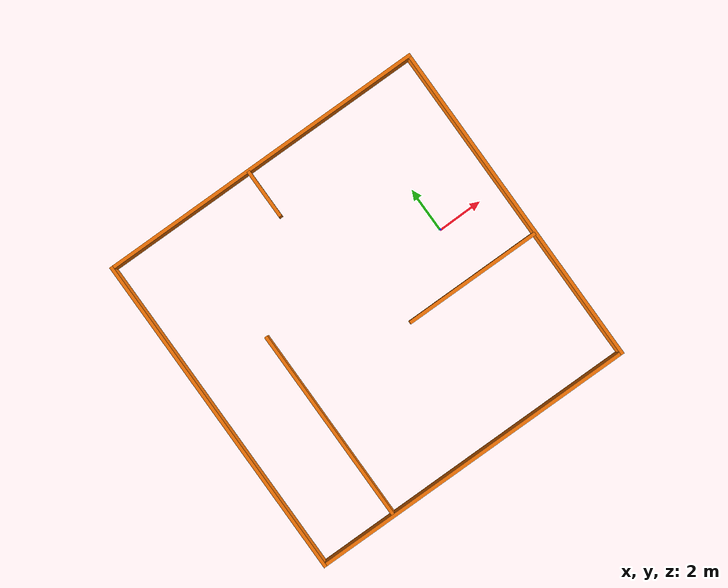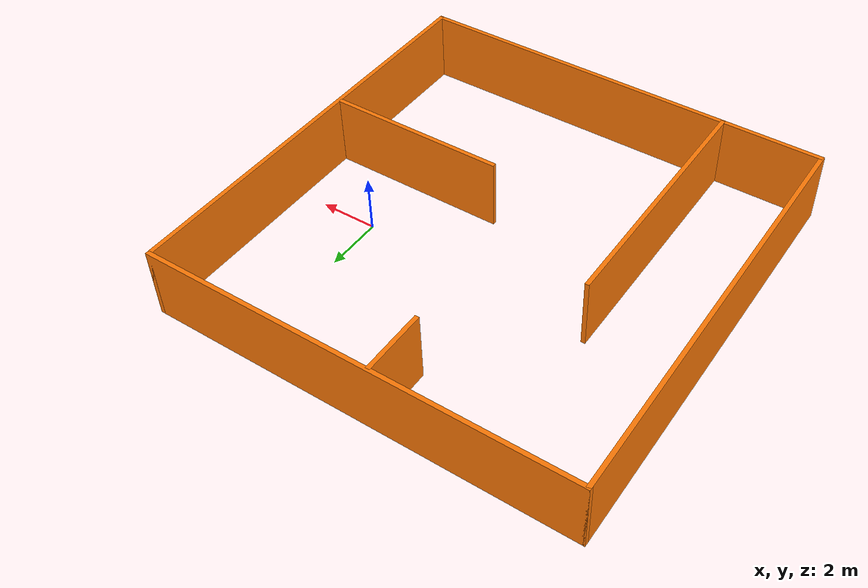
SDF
<?xml version='1.0'?>
<sdf version='1.7'>
  <model name='Untitled'>
    <pose>-4.4078 -0.946813 0 0 -0 0</pose>
    <link name='Wall_0'>
      <collision name='Wall_0_Collision'>
        <geometry>
          <box>
            <size>15 0.15 2.5</size>
          </box>
        </geometry>
        <pose>0 0 1.25 0 -0 0</pose>
      </collision>
      <visual name='Wall_0_Visual'>
        <pose>0 0 1.25 0 -0 0</pose>
        <geometry>
          <box>
            <size>15 0.15 2.5</size>
          </box>
        </geometry>
        <material>
          <script>
            <uri>file://media/materials/scripts/gazebo.material</uri>
            <name>Gazebo/Grey</name>
          </script>
          <ambient>0.996078 0.47451 0.0196078 1</ambient>
        </material>
        <meta>
          <layer>0</layer>
        </meta>
      </visual>
      <pose>-7.425 0 0 0 -0 -1.5708</pose>
    </link>
    <link name='Wall_12'>
      <collision name='Wall_12_Collision'>
        <geometry>
          <box>
            <size>2.25 0.15 2.5</size>
          </box>
        </geometry>
        <pose>0 0 1.25 0 -0 0</pose>
      </collision>
      <visual name='Wall_12_Visual'>
        <pose>0 0 1.25 0 -0 0</pose>
        <geometry>
          <box>
            <size>2.25 0.15 2.5</size>
          </box>
        </geometry>
        <material>
          <script>
            <uri>file://media/materials/scripts/gazebo.material</uri>
            <name>Gazebo/Grey</name>
          </script>
          <ambient>0.996078 0.47451 0.0196078 1</ambient>
        </material>
        <meta>
          <layer>0</layer>
        </meta>
      </visual>
      <pose>-0.626689 6.28375 0 0 -0 -1.5708</pose>
    </link>
    <link name='Wall_14'>
      <collision name='Wall_14_Collision'>
        <geometry>
          <box>
            <size>6.25 0.15 2.5</size>
          </box>
        </geometry>
        <pose>0 0 1.25 0 -0 0</pose>
      </collision>
      <visual name='Wall_14_Visual'>
        <pose>0 0 1.25 0 -0 0</pose>
        <geometry>
          <box>
            <size>6.25 0.15 2.5</size>
          </box>
        </geometry>
        <material>
          <script>
            <uri>file://media/materials/scripts/gazebo.material</uri>
            <name>Gazebo/Grey</name>
          </script>
          <ambient>0.996078 0.47451 0.0196078 1</ambient>
        </material>
        <meta>
          <layer>0</layer>
        </meta>
      </visual>
      <pose>4.26228 -1.42649 0 0 -0 3.14159</pose>
    </link>
    <link name='Wall_2'>
      <collision name='Wall_2_Collision'>
        <geometry>
          <box>
            <size>15 0.15 2.5</size>
          </box>
        </geometry>
        <pose>0 0 1.25 0 -0 0</pose>
      </collision>
      <visual name='Wall_2_Visual'>
        <pose>0 0 1.25 0 -0 0</pose>
        <geometry>
          <box>
            <size>15 0.15 2.5</size>
          </box>
        </geometry>
        <material>
          <script>
            <uri>file://media/materials/scripts/gazebo.material</uri>
            <name>Gazebo/Grey</name>
          </script>
          <ambient>0.996078 0.47451 0.0196078 1</ambient>
        </material>
        <meta>
          <layer>0</layer>
        </meta>
      </visual>
      <pose>-0 7.425 0 0 -0 0</pose>
    </link>
    <link name='Wall_4'>
      <collision name='Wall_4_Collision'>
        <geometry>
          <box>
            <size>15 0.15 2.5</size>
          </box>
        </geometry>
        <pose>0 0 1.25 0 -0 0</pose>
      </collision>
      <visual name='Wall_4_Visual'>
        <pose>0 0 1.25 0 -0 0</pose>
        <geometry>
          <box>
            <size>15 0.15 2.5</size>
          </box>
        </geometry>
        <material>
          <script>
            <uri>file://media/materials/scripts/gazebo.material</uri>
            <name>Gazebo/Grey</name>
          </script>
          <ambient>0.996078 0.47451 0.0196078 1</ambient>
        </material>
        <meta>
          <layer>0</layer>
        </meta>
      </visual>
      <pose>7.425 0 0 0 -0 -1.5708</pose>
    </link>
    <link name='Wall_6'>
      <collision name='Wall_6_Collision'>
        <geometry>
          <box>
            <size>15 0.15 2.5</size>
          </box>
        </geometry>
        <pose>0 0 1.25 0 -0 0</pose>
      </collision>
      <visual name='Wall_6_Visual'>
        <pose>0 0 1.25 0 -0 0</pose>
        <geometry>
          <box>
            <size>15 0.15 2.5</size>
          </box>
        </geometry>
        <material>
          <script>
            <uri>file://media/materials/scripts/gazebo.material</uri>
            <name>Gazebo/Grey</name>
          </script>
          <ambient>0.996078 0.47451 0.0196078 1</ambient>
        </material>
        <meta>
          <layer>0</layer>
        </meta>
      </visual>
      <pose>-0 -7.425 0 0 -0 0</pose>
    </link>
    <link name='Wall_8'>
      <collision name='Wall_8_Collision'>
        <geometry>
          <box>
            <size>9 0.15 2.5</size>
          </box>
        </geometry>
        <pose>0 0 1.25 0 -0 0</pose>
      </collision>
      <visual name='Wall_8_Visual'>
        <pose>0 0 1.25 0 -0 0</pose>
        <geometry>
          <box>
            <size>9 0.15 2.5</size>
          </box>
        </geometry>
        <material>
          <script>
            <uri>file://media/materials/scripts/gazebo.material</uri>
            <name>Gazebo/Grey</name>
          </script>
          <ambient>0.996078 0.47451 0.0196078 1</ambient>
        </material>
        <meta>
          <layer>0</layer>
        </meta>
      </visual>
      <pose>-3.95741 -2.96805 0 0 -0 1.5708</pose>
    </link>
    <static>1</static>
  </model>
</sdf>
